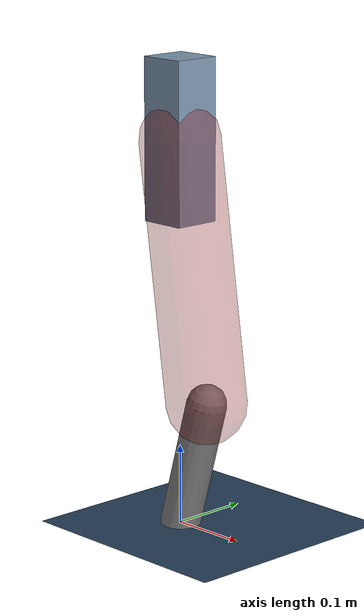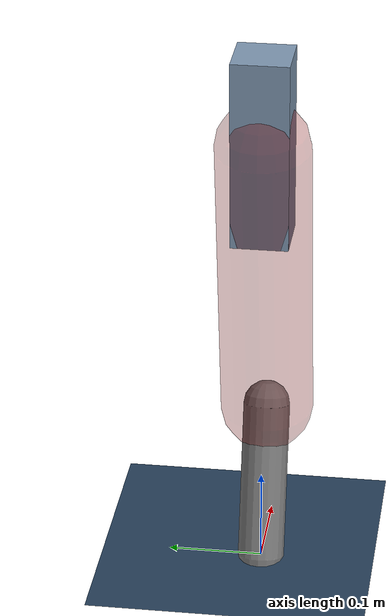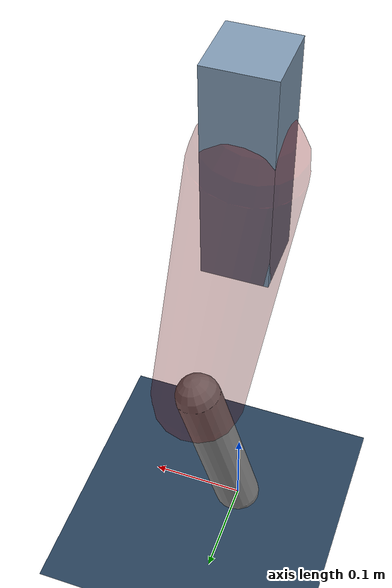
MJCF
<mujoco model="Hopper2D">
	<compiler inertiafromgeom="true" angle="radian" />
	<option timestep="0.001" integrator="implicit" cone="elliptic" solver="Newton" tolerance="1e-10" />

	<default>
		<geom contype="1" conaffinity="1" condim="3" friction="2 0.005 0.0001" solref="0.005 1" />
		<joint limited="true" damping="0.1" />
	</default>

	<asset>
		<texture name="skybox" type="skybox" builtin="gradient" rgb1=".4 .6 .8" rgb2="0 0 0" width="800" height="800" />
		<texture name="grid" type="2d" builtin="checker" rgb1=".1 .2 .3" rgb2=".2 .3 .4" width="300" height="300" mark="edge" markrgb=".2 .3 .4" />
		<material name="ground" texture="grid" texrepeat="1 1" texuniform="true" reflectance="0.1" />
		<material name="leg" rgba="0.5 0.6 0.7 1" />
	</asset>

	<worldbody>

		<geom name="floor" type="plane" size="5 5 0.25" material="ground" />

		<light directional="false" diffuse="0.8 0.8 0.8" specular="0.3 0.3 0.3" pos="0 0 2" dir="0 0 -1" />
		<light mode="targetbodycom" target="base" directional="false" diffuse="0.8 0.8 0.8" specular="0.3 0.3 0.3" pos="0 0 2" dir="0 0 -1" />

		<camera name="fixed" pos="0 -2 1" xyaxes="1 0 0 0 0 1" />
		<camera name="tracking" mode="trackcom" pos="0 -3 1" />

		<body name="root" pos="0 0 0.48395392121879">
			<joint name="slide_x" type="slide" axis="1 0 0" range="-100 100" />
			<joint name="slide_z" type="slide" axis="0 0 1" range="0 10" />

			<body name="base" pos="0 0 0">
				<geom name="torso" type="box" size="0.03 0.03 0.1" mass="1.6389999999999998" material="leg" />

				<body name="link1" pos="0 0 0" euler="0 1.4257976938971555 0">
					<joint type="hinge" axis="0 -1 0" pos="0 0 0" name="hinge1" limited="true" range="-3.14 3.14" stiffness="0" damping="0.1" />
					<geom name="thigh" type="capsule" fromto="0 0 0 0.32427091395753255 0 0" size="0.05" rgba="0.5 0 0 0.3" mass="1.0550314676853378" />

					<body name="link2" pos="0.32427091395753255 0 0" euler="0 0.4247619155679699 0">
						<joint type="hinge" axis="0 -1 0" pos="0 0 0" name="hinge2" limited="true" range="-3.14 3.14" stiffness="0" damping="0.1" />
						<geom name="shank" type="capsule" fromto="0 0 0 0.16968300726125748 0 0" size="0.025" mass="0.37501470653513175" />

					</body>
				</body>
			</body>
		</body>
	</worldbody>

	<actuator>
		<motor name="torque1" joint="hinge1" ctrlrange="-17.912673700749043 17.912673700749043" ctrllimited="true" gear="1" />
		<motor name="torque2" joint="hinge2" ctrlrange="-77.81791551783991 77.81791551783991" ctrllimited="true" gear="1" />
	</actuator>
</mujoco>
